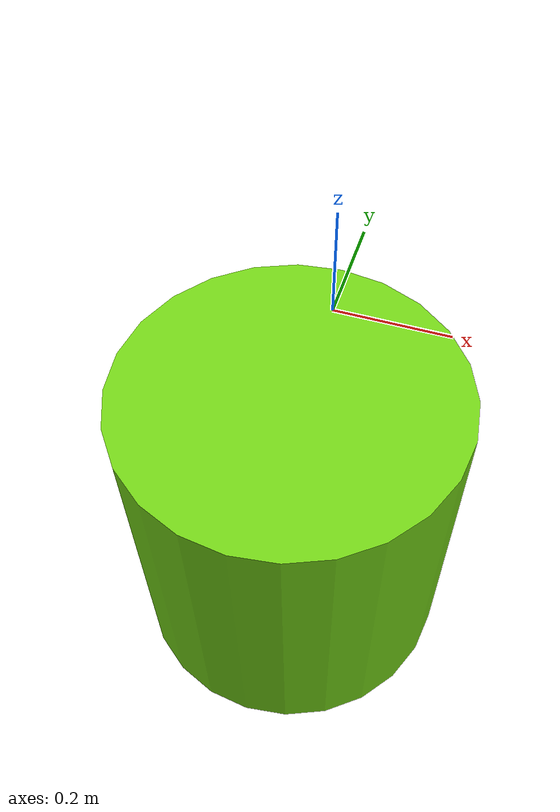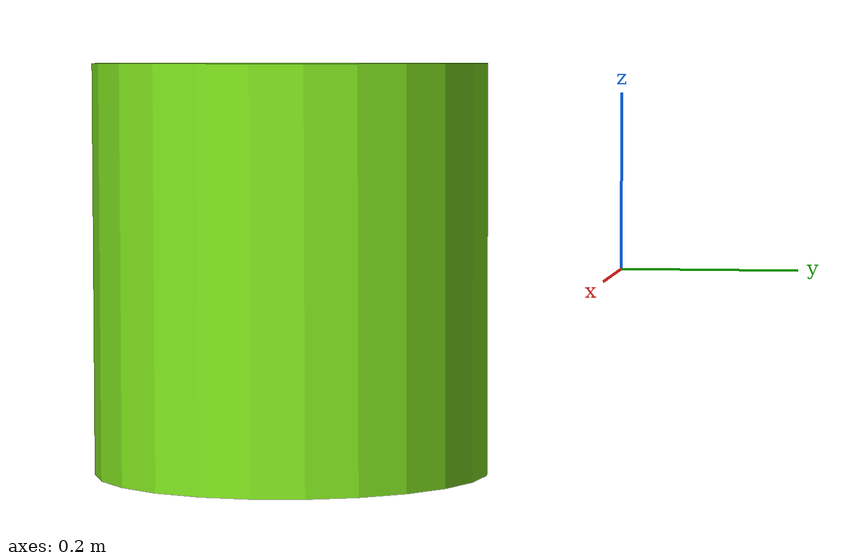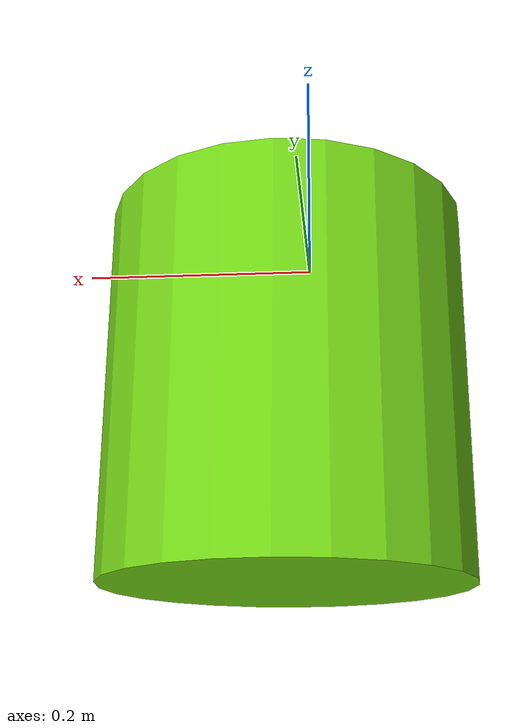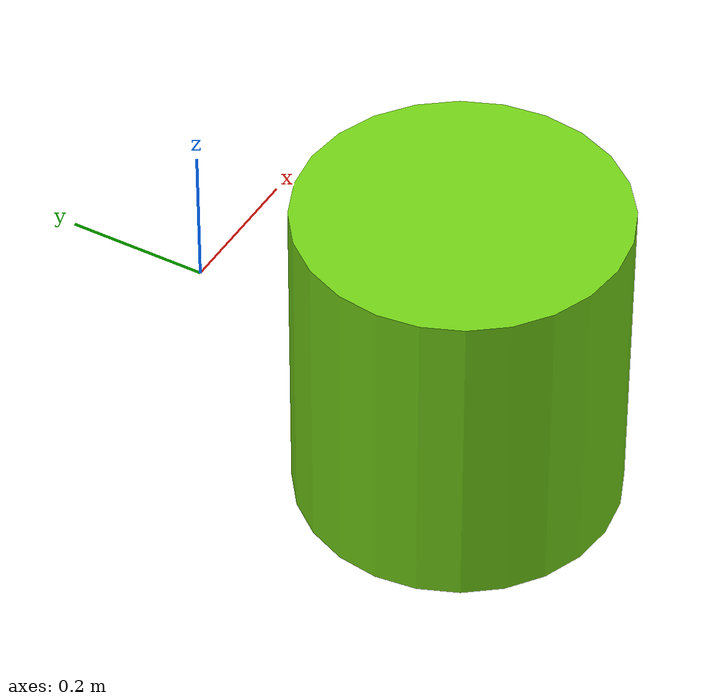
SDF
<?xml version='1.0'?>
<sdf version='1.7'>
  <model name='unit_cylinder_clone_2'>
    <link name='link'>
      <inertial>
        <mass>0.0948971</mass>
        <inertia>
          <ixx>0.00292997</ixx>
          <ixy>0</ixy>
          <ixz>0</ixz>
          <iyy>0.00292997</iyy>
          <iyz>0</iyz>
          <izz>0.00240707</izz>
        </inertia>
        <pose>0 0 0 0 -0 0</pose>
      </inertial>
      <self_collide>0</self_collide>
      <enable_wind>0</enable_wind>
      <kinematic>0</kinematic>
      <pose>0.046364 -0.372954 -1e-06 0 -0 0</pose>
      <gravity>1</gravity>
      <visual name='visual'>
        <geometry>
          <cylinder>
            <radius>0.225233</radius>
            <length>0.467239</length>
          </cylinder>
        </geometry>
        <material>
          <script>
            <name>Gazebo/Grey</name>
            <uri>file://media/materials/scripts/gazebo.material</uri>
          </script>
          <shader type='pixel'>
            <normal_map>__default__</normal_map>
          </shader>
          <ambient>0.769 0.627 0 1</ambient>
          <diffuse>0.451 0.824 0.086 1</diffuse>
          <specular>0.451 0.824 0.086 1</specular>
          <emissive>0.451 0.824 0.086 1</emissive>
        </material>
        <pose>0 0 0 0 -0 0</pose>
        <transparency>0</transparency>
        <cast_shadows>1</cast_shadows>
      </visual>
      <collision name='collision'>
        <laser_retro>0</laser_retro>
        <max_contacts>10</max_contacts>
        <pose>0 0 0 0 -0 0</pose>
        <geometry>
          <cylinder>
            <radius>0.225233</radius>
            <length>0.467239</length>
          </cylinder>
        </geometry>
        <surface>
          <friction>
            <ode>
              <mu>1</mu>
              <mu2>1</mu2>
              <fdir1>0 0 0</fdir1>
              <slip1>0</slip1>
              <slip2>0</slip2>
            </ode>
            <torsional>
              <coefficient>1</coefficient>
              <patch_radius>0</patch_radius>
              <surface_radius>0</surface_radius>
              <use_patch_radius>1</use_patch_radius>
              <ode>
                <slip>0</slip>
              </ode>
            </torsional>
          </friction>
          <bounce>
            <restitution_coefficient>0</restitution_coefficient>
            <threshold>1e+06</threshold>
          </bounce>
          <contact>
            <collide_without_contact>0</collide_without_contact>
            <collide_without_contact_bitmask>1</collide_without_contact_bitmask>
            <collide_bitmask>1</collide_bitmask>
            <ode>
              <soft_cfm>0</soft_cfm>
              <soft_erp>0.2</soft_erp>
              <kp>1e+13</kp>
              <kd>1</kd>
              <max_vel>0.01</max_vel>
              <min_depth>0</min_depth>
            </ode>
            <bullet>
              <split_impulse>1</split_impulse>
              <split_impulse_penetration_threshold>-0.01</split_impulse_penetration_threshold>
              <soft_cfm>0</soft_cfm>
              <soft_erp>0.2</soft_erp>
              <kp>1e+13</kp>
              <kd>1</kd>
            </bullet>
          </contact>
        </surface>
      </collision>
    </link>
    <static>0</static>
    <allow_auto_disable>1</allow_auto_disable>
  </model>
</sdf>
